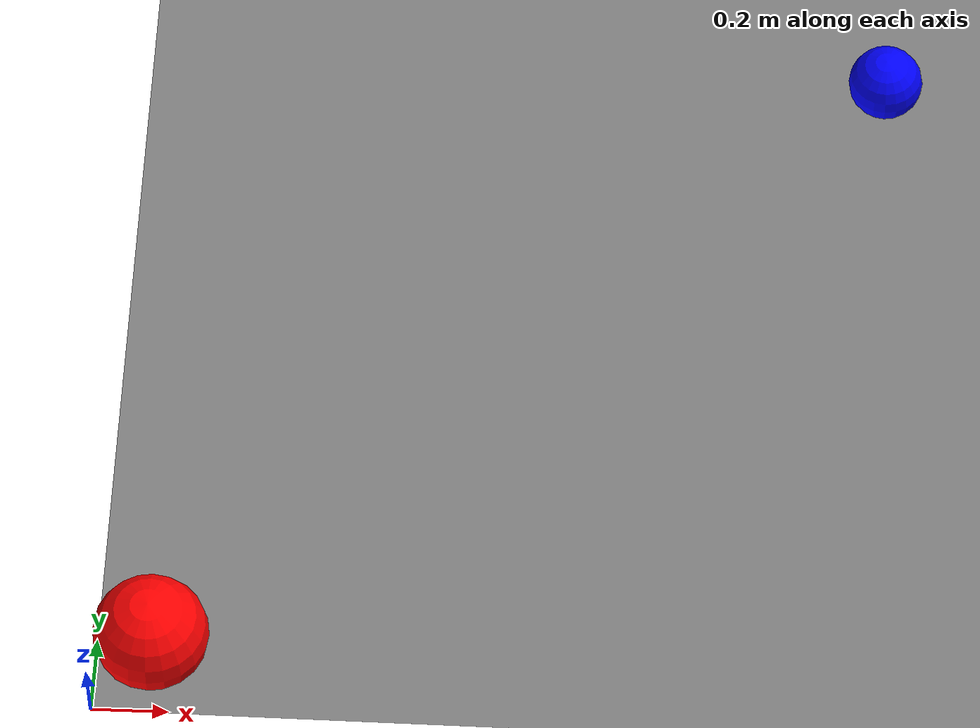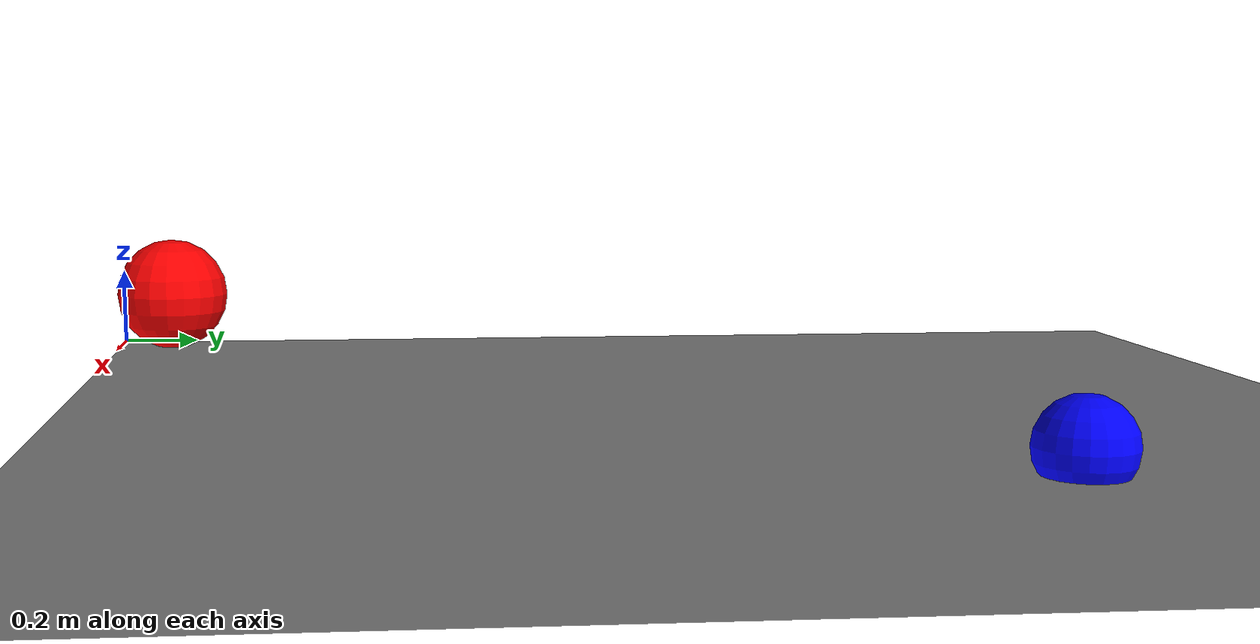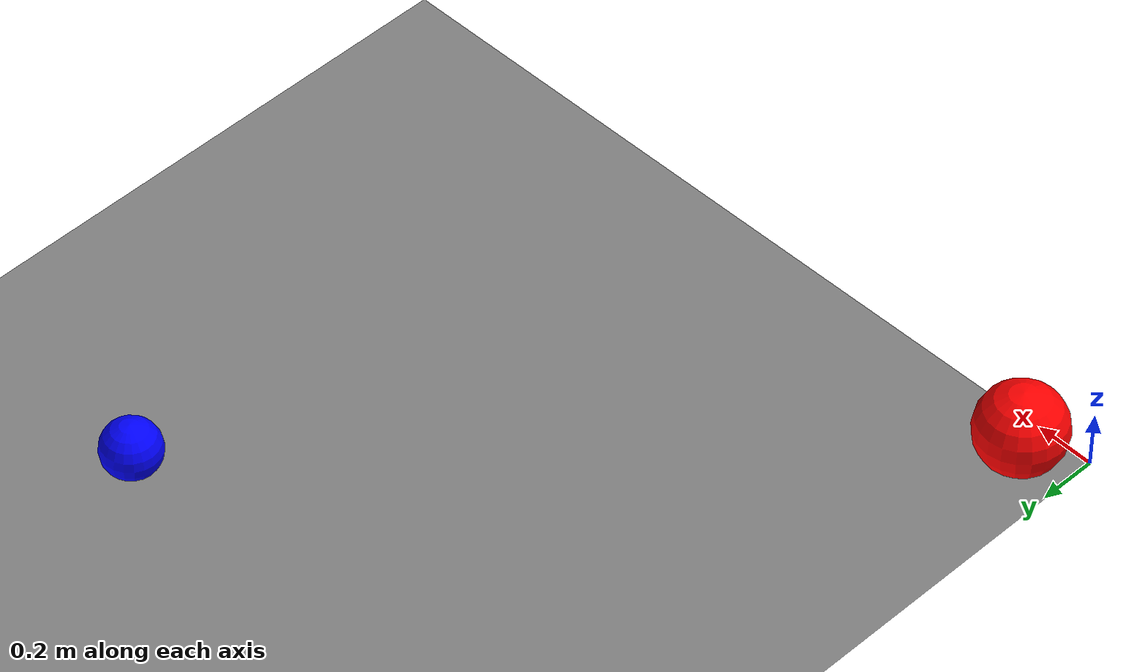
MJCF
<mujoco model="MuJoCo Model">
    <compiler angle="radian" meshdir="/Users/woj/projects/gpr/cache/s3/stls/" texturedir="/Users/woj/projects/gpr/cache/s3/textures/" />
    <option timestep="0.005" />
    <size njmax="500" nconmax="100" />
    <visual>
        <global offwidth="2880" offheight="1530" />
    </visual>
    <worldbody>
        <geom name="floor0" size="2 2 1" pos="2 2 0" type="plane" />
        <body name="floor0" pos="2 2 0">
            <inertial pos="2 2 0" mass="0" diaginertia="0 0 0" />
            <site name="target" pos="0 0 0.05" size="0.1" rgba="0 0 1 1" />
        </body>
        <body name="robot0:particle" pos="0.15 0.15 0.15">
            <inertial pos="0 0 0" mass="1" diaginertia="0.009 0.009 0.009" />
            <joint name="robot0:slide0" pos="0 0 0" axis="1 0 0" type="slide" damping="0.1" />
            <joint name="robot0:slide1" pos="0 0 0" axis="0 1 0" type="slide" damping="0.1" />
            <joint name="robot0:slide2" pos="0 0 0" axis="0 0 1" type="slide" damping="10000" />
            <geom size="0.15" rgba="1 0 0 1" />
            <site name="object" pos="0 0 0" size="0.1" rgba="0 0 1 1" />
            <camera name="rgb" pos="0 0 2.5" fovy="40" />
        </body>
    </worldbody>
    <actuator>
        <general joint="robot0:slide0" gear="100 0 0 0 0 0" />
        <general joint="robot0:slide1" gear="100 0 0 0 0 0" />
    </actuator>
</mujoco>
